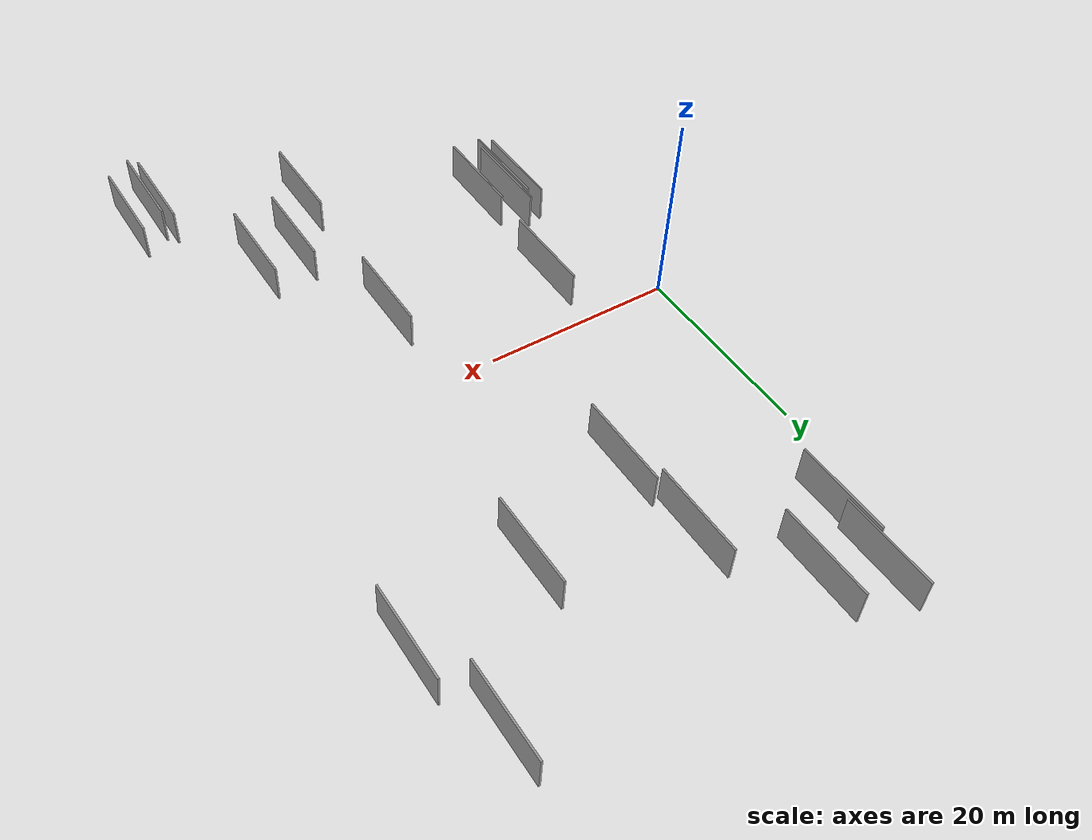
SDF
<sdf version="1.6">
 <world name="default">
  <scene>
   <sky><clouds><speed>12</speed></clouds></sky>
   <ambient>0.4 0.4 0.4 1</ambient>
   <background>0.7 0.7 0.7 1</background>
   <shadows>1</shadows>
  </scene>
  <gravity>0 0 -9.8066</gravity>
  <magnetic_field>6e-06 2.3e-05 -4.2e-05</magnetic_field>
  <physics default="0" name="default_physics" type="ode">
   <ode>
    <solver>
     <type>quick</type>
     <iters>10</iters>
     <sor>1.0</sor>
     <use_dynamic_moi_rescaling>0</use_dynamic_moi_rescaling>
    </solver>
    <constraints>
     <cfm>0</cfm>
     <erp>0.2</erp>
     <contact_max_correcting_vel>100</contact_max_correcting_vel>
     <contact_surface_layer>0.001</contact_surface_layer>
    </constraints>
   </ode>
   <max_step_size>0.004</max_step_size>
   <real_time_factor>1</real_time_factor>
   <real_time_update_rate>250</real_time_update_rate>
  </physics>
  <light name="sun" type="directional">
   <pose>0 0 10 0 0 0</pose>
   <diffuse>0.8 0.8 0.8 1</diffuse>
   <specular>0.2 0.2 0.2 1</specular>
   <attenuation>
    <range>1000</range>
    <constant>0.9</constant>
    <linear>0.01</linear>
    <quadratic>0.001</quadratic>
   </attenuation>
   <direction>-0.5 0.1 -0.9</direction>
  </light>
  <model name="grey_wall_1">
   <static>1</static>
   <pose>30.0001 22.1129 0.0 0.000000 0.000000 1.570796</pose>
   <link name="link">
    <pose>0 0 2.00 0 0 0</pose>
    <collision name="collision"><geometry><box><size>10.00 0.2 4.00</size></box></geometry></collision>
    <visual name="visual">
     <cast_shadows>0</cast_shadows>
     <geometry><box><size>10.00 0.2 4.00</size></box></geometry>
     <material>
      <script>
       <uri>model://grey_wall/materials/scripts</uri>
       <uri>model://grey_wall/materials/textures</uri>
       <name>vrc/grey_wall</name>
      </script>
     </material>
    </visual>
   </link>
  </model>
  <model name="grey_wall_2">
   <static>1</static>
   <pose>40.3237 -37.8843 0.0 0.000000 0.000000 1.570796</pose>
   <link name="link">
    <pose>0 0 2.00 0 0 0</pose>
    <collision name="collision"><geometry><box><size>10.00 0.2 4.00</size></box></geometry></collision>
    <visual name="visual">
     <cast_shadows>0</cast_shadows>
     <geometry><box><size>10.00 0.2 4.00</size></box></geometry>
     <material>
      <script>
       <uri>model://grey_wall/materials/scripts</uri>
       <uri>model://grey_wall/materials/textures</uri>
       <name>vrc/grey_wall</name>
      </script>
     </material>
    </visual>
   </link>
  </model>
  <model name="grey_wall_3">
   <static>1</static>
   <pose>29.4672 -24.1367 0.0 0.000000 0.000000 1.570796</pose>
   <link name="link">
    <pose>0 0 2.00 0 0 0</pose>
    <collision name="collision"><geometry><box><size>10.00 0.2 4.00</size></box></geometry></collision>
    <visual name="visual">
     <cast_shadows>0</cast_shadows>
     <geometry><box><size>10.00 0.2 4.00</size></box></geometry>
     <material>
      <script>
       <uri>model://grey_wall/materials/scripts</uri>
       <uri>model://grey_wall/materials/textures</uri>
       <name>vrc/grey_wall</name>
      </script>
     </material>
    </visual>
   </link>
  </model>
  <model name="grey_wall_4">
   <static>1</static>
   <pose>40.1848 34.2560 0.0 0.000000 0.000000 1.570796</pose>
   <link name="link">
    <pose>0 0 2.00 0 0 0</pose>
    <collision name="collision"><geometry><box><size>10.00 0.2 4.00</size></box></geometry></collision>
    <visual name="visual">
     <cast_shadows>0</cast_shadows>
     <geometry><box><size>10.00 0.2 4.00</size></box></geometry>
     <material>
      <script>
       <uri>model://grey_wall/materials/scripts</uri>
       <uri>model://grey_wall/materials/textures</uri>
       <name>vrc/grey_wall</name>
      </script>
     </material>
    </visual>
   </link>
  </model>
  <model name="grey_wall_5">
   <static>1</static>
   <pose>39.4320 -36.8955 0.0 0.000000 0.000000 1.570796</pose>
   <link name="link">
    <pose>0 0 2.00 0 0 0</pose>
    <collision name="collision"><geometry><box><size>10.00 0.2 4.00</size></box></geometry></collision>
    <visual name="visual">
     <cast_shadows>0</cast_shadows>
     <geometry><box><size>10.00 0.2 4.00</size></box></geometry>
     <material>
      <script>
       <uri>model://grey_wall/materials/scripts</uri>
       <uri>model://grey_wall/materials/textures</uri>
       <name>vrc/grey_wall</name>
      </script>
     </material>
    </visual>
   </link>
  </model>
  <model name="grey_wall_6">
   <static>1</static>
   <pose>25.6705 -10.8942 0.0 0.000000 0.000000 1.570796</pose>
   <link name="link">
    <pose>0 0 2.00 0 0 0</pose>
    <collision name="collision"><geometry><box><size>10.00 0.2 4.00</size></box></geometry></collision>
    <visual name="visual">
     <cast_shadows>0</cast_shadows>
     <geometry><box><size>10.00 0.2 4.00</size></box></geometry>
     <material>
      <script>
       <uri>model://grey_wall/materials/scripts</uri>
       <uri>model://grey_wall/materials/textures</uri>
       <name>vrc/grey_wall</name>
      </script>
     </material>
    </visual>
   </link>
  </model>
  <model name="grey_wall_7">
   <static>1</static>
   <pose>6.0155 -20.1394 0.0 0.000000 0.000000 1.570796</pose>
   <link name="link">
    <pose>0 0 2.00 0 0 0</pose>
    <collision name="collision"><geometry><box><size>10.00 0.2 4.00</size></box></geometry></collision>
    <visual name="visual">
     <cast_shadows>0</cast_shadows>
     <geometry><box><size>10.00 0.2 4.00</size></box></geometry>
     <material>
      <script>
       <uri>model://grey_wall/materials/scripts</uri>
       <uri>model://grey_wall/materials/textures</uri>
       <name>vrc/grey_wall</name>
      </script>
     </material>
    </visual>
   </link>
  </model>
  <model name="grey_wall_8">
   <static>1</static>
   <pose>5.5398 -21.4926 0.0 0.000000 0.000000 1.570796</pose>
   <link name="link">
    <pose>0 0 2.00 0 0 0</pose>
    <collision name="collision"><geometry><box><size>10.00 0.2 4.00</size></box></geometry></collision>
    <visual name="visual">
     <cast_shadows>0</cast_shadows>
     <geometry><box><size>10.00 0.2 4.00</size></box></geometry>
     <material>
      <script>
       <uri>model://grey_wall/materials/scripts</uri>
       <uri>model://grey_wall/materials/textures</uri>
       <name>vrc/grey_wall</name>
      </script>
     </material>
    </visual>
   </link>
  </model>
  <model name="grey_wall_9">
   <static>1</static>
   <pose>43.2239 24.5373 0.0 0.000000 0.000000 1.570796</pose>
   <link name="link">
    <pose>0 0 2.00 0 0 0</pose>
    <collision name="collision"><geometry><box><size>10.00 0.2 4.00</size></box></geometry></collision>
    <visual name="visual">
     <cast_shadows>0</cast_shadows>
     <geometry><box><size>10.00 0.2 4.00</size></box></geometry>
     <material>
      <script>
       <uri>model://grey_wall/materials/scripts</uri>
       <uri>model://grey_wall/materials/textures</uri>
       <name>vrc/grey_wall</name>
      </script>
     </material>
    </visual>
   </link>
  </model>
  <model name="grey_wall_10">
   <static>1</static>
   <pose>4.6369 37.4516 0.0 0.000000 0.000000 1.570796</pose>
   <link name="link">
    <pose>0 0 2.00 0 0 0</pose>
    <collision name="collision"><geometry><box><size>10.00 0.2 4.00</size></box></geometry></collision>
    <visual name="visual">
     <cast_shadows>0</cast_shadows>
     <geometry><box><size>10.00 0.2 4.00</size></box></geometry>
     <material>
      <script>
       <uri>model://grey_wall/materials/scripts</uri>
       <uri>model://grey_wall/materials/textures</uri>
       <name>vrc/grey_wall</name>
      </script>
     </material>
    </visual>
   </link>
  </model>
  <model name="grey_wall_11">
   <static>1</static>
   <pose>42.9920 -36.3262 0.0 0.000000 0.000000 1.570796</pose>
   <link name="link">
    <pose>0 0 2.00 0 0 0</pose>
    <collision name="collision"><geometry><box><size>10.00 0.2 4.00</size></box></geometry></collision>
    <visual name="visual">
     <cast_shadows>0</cast_shadows>
     <geometry><box><size>10.00 0.2 4.00</size></box></geometry>
     <material>
      <script>
       <uri>model://grey_wall/materials/scripts</uri>
       <uri>model://grey_wall/materials/textures</uri>
       <name>vrc/grey_wall</name>
      </script>
     </material>
    </visual>
   </link>
  </model>
  <model name="grey_wall_12">
   <static>1</static>
   <pose>17.1694 17.3217 0.0 0.000000 0.000000 1.570796</pose>
   <link name="link">
    <pose>0 0 2.00 0 0 0</pose>
    <collision name="collision"><geometry><box><size>10.00 0.2 4.00</size></box></geometry></collision>
    <visual name="visual">
     <cast_shadows>0</cast_shadows>
     <geometry><box><size>10.00 0.2 4.00</size></box></geometry>
     <material>
      <script>
       <uri>model://grey_wall/materials/scripts</uri>
       <uri>model://grey_wall/materials/textures</uri>
       <name>vrc/grey_wall</name>
      </script>
     </material>
    </visual>
   </link>
  </model>
  <model name="grey_wall_13">
   <static>1</static>
   <pose>4.3527 -20.5726 0.0 0.000000 0.000000 1.570796</pose>
   <link name="link">
    <pose>0 0 2.00 0 0 0</pose>
    <collision name="collision"><geometry><box><size>10.00 0.2 4.00</size></box></geometry></collision>
    <visual name="visual">
     <cast_shadows>0</cast_shadows>
     <geometry><box><size>10.00 0.2 4.00</size></box></geometry>
     <material>
      <script>
       <uri>model://grey_wall/materials/scripts</uri>
       <uri>model://grey_wall/materials/textures</uri>
       <name>vrc/grey_wall</name>
      </script>
     </material>
    </visual>
   </link>
  </model>
  <model name="grey_wall_14">
   <static>1</static>
   <pose>16.1810 26.7199 0.0 0.000000 0.000000 1.570796</pose>
   <link name="link">
    <pose>0 0 2.00 0 0 0</pose>
    <collision name="collision"><geometry><box><size>10.00 0.2 4.00</size></box></geometry></collision>
    <visual name="visual">
     <cast_shadows>0</cast_shadows>
     <geometry><box><size>10.00 0.2 4.00</size></box></geometry>
     <material>
      <script>
       <uri>model://grey_wall/materials/scripts</uri>
       <uri>model://grey_wall/materials/textures</uri>
       <name>vrc/grey_wall</name>
      </script>
     </material>
    </visual>
   </link>
  </model>
  <model name="grey_wall_15">
   <static>1</static>
   <pose>25.4386 -30.7612 0.0 0.000000 0.000000 1.570796</pose>
   <link name="link">
    <pose>0 0 2.00 0 0 0</pose>
    <collision name="collision"><geometry><box><size>10.00 0.2 4.00</size></box></geometry></collision>
    <visual name="visual">
     <cast_shadows>0</cast_shadows>
     <geometry><box><size>10.00 0.2 4.00</size></box></geometry>
     <material>
      <script>
       <uri>model://grey_wall/materials/scripts</uri>
       <uri>model://grey_wall/materials/textures</uri>
       <name>vrc/grey_wall</name>
      </script>
     </material>
    </visual>
   </link>
  </model>
  <model name="grey_wall_16">
   <static>1</static>
   <pose>8.9900 -7.6367 0.0 0.000000 0.000000 1.570796</pose>
   <link name="link">
    <pose>0 0 2.00 0 0 0</pose>
    <collision name="collision"><geometry><box><size>10.00 0.2 4.00</size></box></geometry></collision>
    <visual name="visual">
     <cast_shadows>0</cast_shadows>
     <geometry><box><size>10.00 0.2 4.00</size></box></geometry>
     <material>
      <script>
       <uri>model://grey_wall/materials/scripts</uri>
       <uri>model://grey_wall/materials/textures</uri>
       <name>vrc/grey_wall</name>
      </script>
     </material>
    </visual>
   </link>
  </model>
  <model name="grey_wall_17">
   <static>1</static>
   <pose>9.8505 35.5563 0.0 0.000000 0.000000 1.570796</pose>
   <link name="link">
    <pose>0 0 2.00 0 0 0</pose>
    <collision name="collision"><geometry><box><size>10.00 0.2 4.00</size></box></geometry></collision>
    <visual name="visual">
     <cast_shadows>0</cast_shadows>
     <geometry><box><size>10.00 0.2 4.00</size></box></geometry>
     <material>
      <script>
       <uri>model://grey_wall/materials/scripts</uri>
       <uri>model://grey_wall/materials/textures</uri>
       <name>vrc/grey_wall</name>
      </script>
     </material>
    </visual>
   </link>
  </model>
  <model name="grey_wall_18">
   <static>1</static>
   <pose>8.5831 -21.7777 0.0 0.000000 0.000000 1.570796</pose>
   <link name="link">
    <pose>0 0 2.00 0 0 0</pose>
    <collision name="collision"><geometry><box><size>10.00 0.2 4.00</size></box></geometry></collision>
    <visual name="visual">
     <cast_shadows>0</cast_shadows>
     <geometry><box><size>10.00 0.2 4.00</size></box></geometry>
     <material>
      <script>
       <uri>model://grey_wall/materials/scripts</uri>
       <uri>model://grey_wall/materials/textures</uri>
       <name>vrc/grey_wall</name>
      </script>
     </material>
    </visual>
   </link>
  </model>
  <model name="grey_wall_19">
   <static>1</static>
   <pose>4.1501 31.2631 0.0 0.000000 0.000000 1.570796</pose>
   <link name="link">
    <pose>0 0 2.00 0 0 0</pose>
    <collision name="collision"><geometry><box><size>10.00 0.2 4.00</size></box></geometry></collision>
    <visual name="visual">
     <cast_shadows>0</cast_shadows>
     <geometry><box><size>10.00 0.2 4.00</size></box></geometry>
     <material>
      <script>
       <uri>model://grey_wall/materials/scripts</uri>
       <uri>model://grey_wall/materials/textures</uri>
       <name>vrc/grey_wall</name>
      </script>
     </material>
    </visual>
   </link>
  </model>
  <model name="grey_wall_20">
   <static>1</static>
   <pose>33.9987 -23.6762 0.0 0.000000 0.000000 1.570796</pose>
   <link name="link">
    <pose>0 0 2.00 0 0 0</pose>
    <collision name="collision"><geometry><box><size>10.00 0.2 4.00</size></box></geometry></collision>
    <visual name="visual">
     <cast_shadows>0</cast_shadows>
     <geometry><box><size>10.00 0.2 4.00</size></box></geometry>
     <material>
      <script>
       <uri>model://grey_wall/materials/scripts</uri>
       <uri>model://grey_wall/materials/textures</uri>
       <name>vrc/grey_wall</name>
      </script>
     </material>
    </visual>
   </link>
  </model>
 </world>
</sdf>
